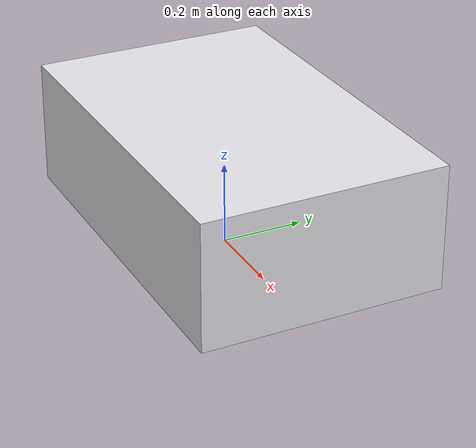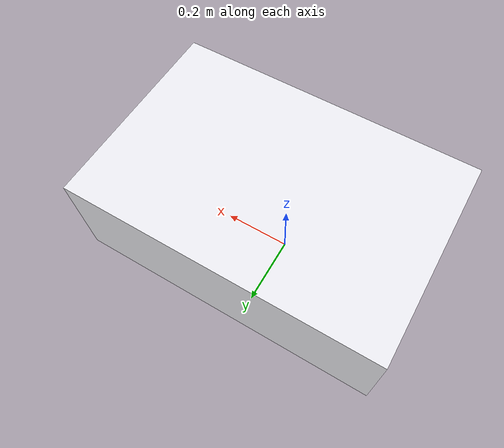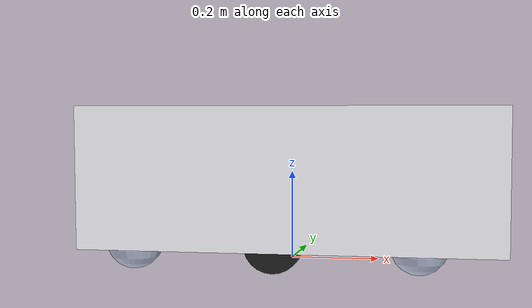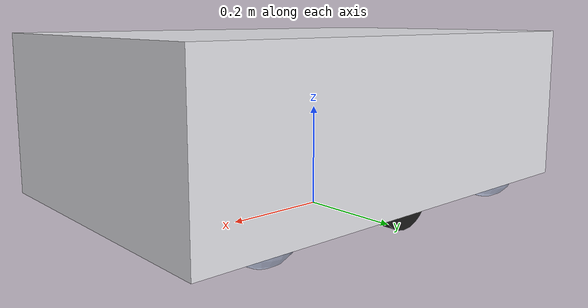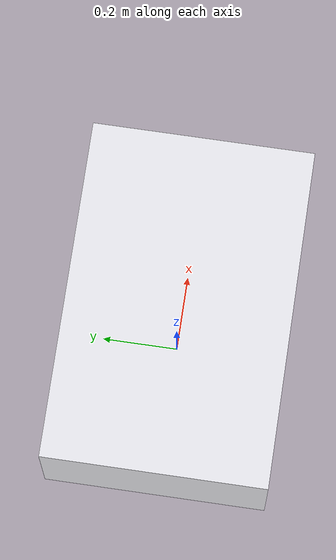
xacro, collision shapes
<?xml version="1.0"?>
<robot name="mir_social" xmlns:xacro="http://ros.org/wiki/xacro">

  <xacro:property name="mesh" value="file://$(find social_nav_description)/meshes/mir"/>
  <xacro:property name="wheel_radius" value="0.0625"/>
  <xacro:property name="wheel_len" value="0.032"/>
  <xacro:property name="wheel_sep" value="0.445208"/>
  <!-- LiDAR range noise (Gaussian stddev, metres). Override via the SOCIAL_NAV_SCAN_NOISE env
       var: 0.0 clean, 0.01 realistic (default), 0.03 stress. The demo scripts set it by profile. -->
  <xacro:property name="scan_noise_stddev" value="$(optenv SOCIAL_NAV_SCAN_NOISE 0.01)"/>

  <material name="mir_white"><color rgba="0.9 0.9 0.92 1"/></material>
  <material name="mir_black"><color rgba="0.1 0.1 0.1 1"/></material>
  <material name="mir_silver"><color rgba="0.79 0.82 0.93 1"/></material>

  <xacro:macro name="cyl_inertia" params="m r h">
    <inertial>
      <mass value="${m}"/>
      <inertia ixx="${m*(3*r*r+h*h)/12.0}" ixy="0" ixz="0"
               iyy="${m*(3*r*r+h*h)/12.0}" iyz="0" izz="${m*r*r/2.0}"/>
    </inertial>
  </xacro:macro>

  <link name="base_footprint"/>
  <joint name="base_joint" type="fixed">
    <parent link="base_footprint"/>
    <child link="base_link"/>
    <origin rpy="0 0 0" xyz="0 0 0"/>
  </joint>

  <link name="base_link">
    <inertial>
      <mass value="77.0"/>
      <origin rpy="0 0 0" xyz="-0.0124 0.0 0.15"/>
      <inertia ixx="0.834" ixy="0" ixz="0" iyy="1.861" iyz="0" izz="2.182"/>
    </inertial>
    <visual>
      <origin rpy="0 0 0" xyz="0.037646 0 0"/>
      <geometry><mesh filename="${mesh}/visual/mir_100_base.stl"/></geometry>
      <material name="mir_white"/>
    </visual>
    <!-- Primitive collision box (MiR-100 body ~0.89 x 0.58 x 0.30, bottom above wheels). -->
    <collision>
      <origin rpy="0 0 0" xyz="0.037646 0 0.20"/>
      <geometry><box size="0.89 0.58 0.30"/></geometry>
    </collision>
  </link>
  <gazebo reference="base_link"><material>Gazebo/White</material></gazebo>

  <!-- Drive wheels -->
  <xacro:macro name="drive_wheel" params="name y">
    <joint name="${name}_joint" type="continuous">
      <origin rpy="0 0 0" xyz="0.0 ${y} ${wheel_radius}"/>
      <parent link="base_link"/>
      <child link="${name}_link"/>
      <axis xyz="0 1 0"/>
    </joint>
    <link name="${name}_link">
      <!-- Primitive cylinder visual (not the wheel.stl mesh): the mesh did not render as a wheel
           in the GUI, and a cylinder is a faithful wheel shape that always shows in Gazebo + RViz. -->
      <visual>
        <origin rpy="1.5707963 0 0" xyz="0 0 0"/>
        <geometry><cylinder length="${wheel_len}" radius="${wheel_radius}"/></geometry>
        <material name="mir_black"/>
      </visual>
      <collision>
        <origin rpy="1.5707963 0 0" xyz="0 0 0"/>
        <geometry><cylinder length="${wheel_len}" radius="${wheel_radius}"/></geometry>
      </collision>
      <xacro:cyl_inertia m="1.0" r="${wheel_radius}" h="${wheel_len}"/>
    </link>
    <gazebo reference="${name}_link">
      <mu1>1.0</mu1><mu2>1.0</mu2><material>Gazebo/FlatBlack</material>
    </gazebo>
  </xacro:macro>
  <xacro:drive_wheel name="left_wheel" y="${wheel_sep/2.0}"/>
  <xacro:drive_wheel name="right_wheel" y="${-wheel_sep/2.0}"/>

  <!-- Passive casters: MiR caster hub mesh (visual) + low-friction ground sphere (collision). -->
  <xacro:macro name="caster" params="name x y">
    <joint name="${name}_joint" type="fixed">
      <origin rpy="0 0 0" xyz="${x} ${y} 0.1565"/>
      <parent link="base_link"/>
      <child link="${name}_link"/>
    </joint>
    <link name="${name}_link">
      <visual>
        <origin rpy="0 0 0" xyz="0 0 0"/>
        <geometry><mesh filename="${mesh}/visual/caster_wheel_base.stl"/></geometry>
        <material name="mir_silver"/>
      </visual>
      <collision>
        <origin rpy="0 0 0" xyz="-0.0382 0 ${-0.1565 + wheel_radius}"/>
        <geometry><sphere radius="${wheel_radius}"/></geometry>
      </collision>
      <xacro:cyl_inertia m="0.5" r="${wheel_radius}" h="${wheel_len}"/>
    </link>
    <gazebo reference="${name}_link">
      <mu1>0.0</mu1><mu2>0.0</mu2><material>Gazebo/Grey</material>
    </gazebo>
  </xacro:macro>
  <xacro:caster name="fl_caster" x="0.341346" y="0.203"/>
  <xacro:caster name="fr_caster" x="0.341346" y="-0.203"/>
  <xacro:caster name="bl_caster" x="-0.270154" y="0.203"/>
  <xacro:caster name="br_caster" x="-0.270154" y="-0.203"/>

  <!-- SICK lidar (visual mesh) + Gazebo Classic 360-degree ray sensor -> /scan. -->
  <link name="front_laser_link">
    <visual>
      <origin rpy="0 0 0" xyz="0 0 0"/>
      <geometry><mesh filename="${mesh}/visual/sick_lms-100.stl"/></geometry>
      <material name="mir_black"/>
    </visual>
    <xacro:cyl_inertia m="0.5" r="0.05" h="0.05"/>
  </link>
  <joint name="front_laser_joint" type="fixed">
    <parent link="base_link"/>
    <child link="front_laser_link"/>
    <origin rpy="0 0 0" xyz="0.429646 0.0 0.40"/>
  </joint>

  <gazebo reference="front_laser_link">
    <sensor name="front_laser" type="ray">
      <always_on>true</always_on>
      <visualize>false</visualize>
      <update_rate>15</update_rate>
      <ray>
        <scan>
          <horizontal>
            <samples>360</samples>
            <resolution>1</resolution>
            <min_angle>-3.14159</min_angle>
            <max_angle>3.14159</max_angle>
          </horizontal>
        </scan>
        <range><min>0.20</min><max>12.0</max><resolution>0.01</resolution></range>
        <noise>
          <type>gaussian</type>
          <mean>0.0</mean>
          <stddev>${scan_noise_stddev}</stddev>
        </noise>
      </ray>
      <plugin name="laser_plugin" filename="libgazebo_ros_ray_sensor.so">
        <ros><remapping>~/out:=scan</remapping></ros>
        <output_type>sensor_msgs/LaserScan</output_type>
        <frame_name>front_laser_link</frame_name>
      </plugin>
    </sensor>
  </gazebo>

  <!-- Gazebo Classic differential drive -->
  <gazebo>
    <plugin name="diff_drive" filename="libgazebo_ros_diff_drive.so">
      <ros><namespace>/</namespace></ros>
      <update_rate>30</update_rate>
      <left_joint>left_wheel_joint</left_joint>
      <right_joint>right_wheel_joint</right_joint>
      <wheel_separation>${wheel_sep}</wheel_separation>
      <wheel_diameter>${2.0*wheel_radius}</wheel_diameter>
      <max_wheel_torque>60.0</max_wheel_torque>
      <max_wheel_acceleration>1.5</max_wheel_acceleration>
      <command_topic>cmd_vel</command_topic>
      <publish_odom>true</publish_odom>
      <publish_odom_tf>true</publish_odom_tf>
      <publish_wheel_tf>true</publish_wheel_tf>
      <odometry_topic>odom</odometry_topic>
      <odometry_frame>odom</odometry_frame>
      <robot_base_frame>base_footprint</robot_base_frame>
    </plugin>
  </gazebo>

</robot>
